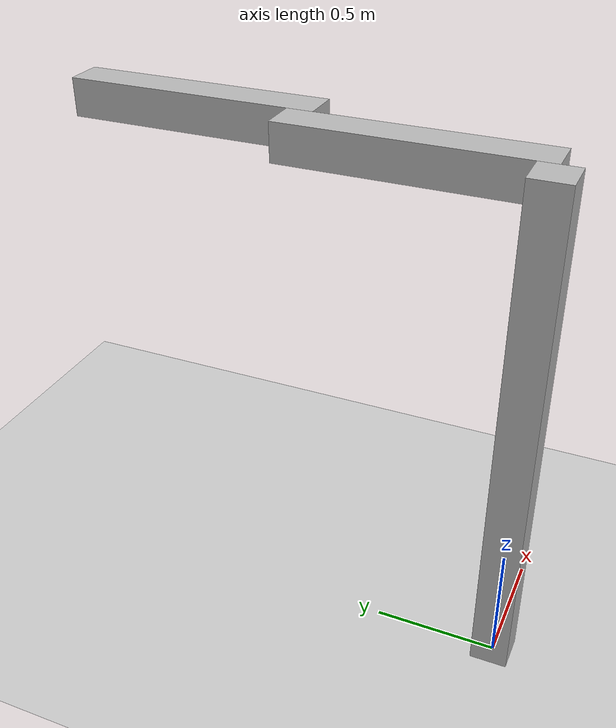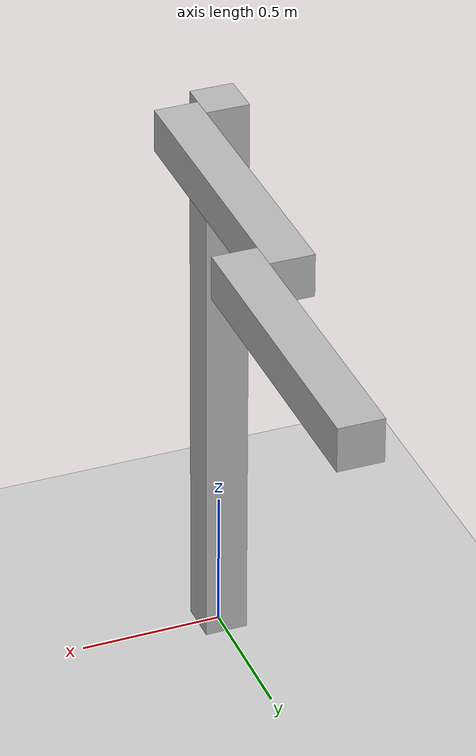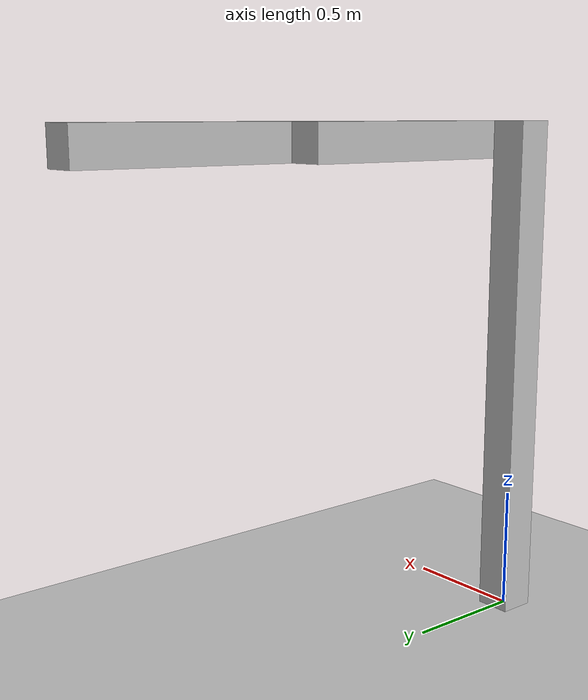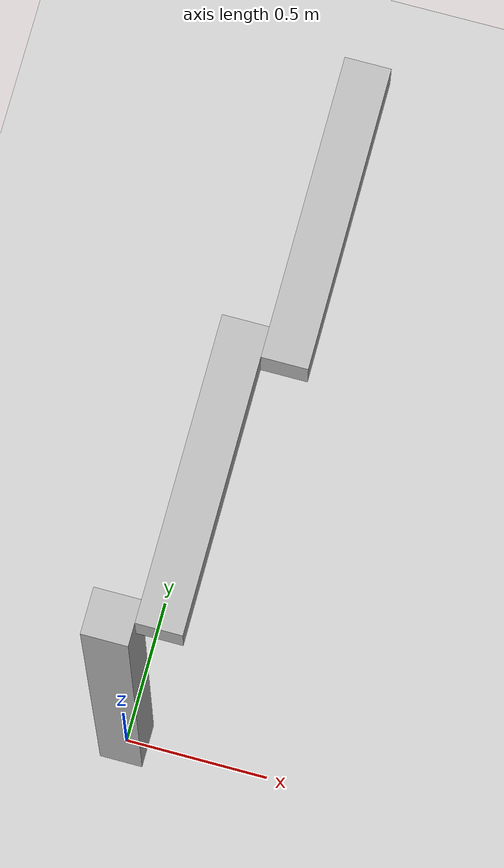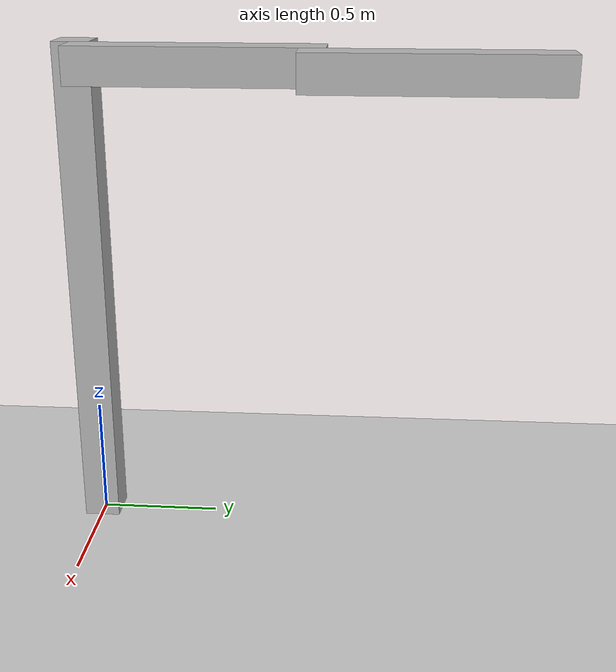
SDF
<?xml version="1.0"?>

<sdf version='1.11'>

  <world name="tutorial_controlboard">
    <light type="directional" name="sun">
      <cast_shadows>true</cast_shadows>
      <pose>0 0 10 0 0 0</pose>
      <diffuse>0.8 0.8 0.8 1</diffuse>
      <specular>0.2 0.2 0.2 1</specular>
      <attenuation>
        <range>1000</range>
        <constant>0.9</constant>
        <linear>0.01</linear>
        <quadratic>0.001</quadratic>
      </attenuation>
      <direction>-0.5 0.1 -0.9</direction>
    </light>

    <model name="ground_plane">
      <static>true</static>
      <link name="link">
        <collision name="collision">
          <geometry>
            <plane>
              <normal>0 0 1</normal>
              <size>100 100</size>
            </plane>
          </geometry>
        </collision>
        <visual name="visual">
          <geometry>
            <plane>
              <normal>0 0 1</normal>
              <size>100 100</size>
            </plane>
          </geometry>
          <material>
            <ambient>0.8 0.8 0.8 1</ambient>
            <diffuse>0.8 0.8 0.8 1</diffuse>
            <specular>0.8 0.8 0.8 1</specular>
          </material>
        </visual>
      </link>
    </model>

    <model name="double_pendulum">
      <joint name="fixed_base" type="fixed">
        <parent>world</parent>
        <child>base_link</child>
      </joint>
      <link name='base_link'>
        <inertial>
          <pose>0 0 0 0 0 0</pose>
          <density>8000</density>
        </inertial>
        <collision name='base_link_fixed_joint_lump__base_collision'>
          <pose>0 0 1 0 0 0</pose>
          <geometry>
            <box>
              <size>0.15 0.15 2.15</size>
            </box>
          </geometry>
        </collision>
        <visual name='base_link_fixed_joint_lump__base_visual'>
          <pose>0 0 1 0 0 0</pose>
          <geometry>
            <box>
              <size>0.15 0.15 2.15</size>
            </box>
          </geometry>
        </visual>
      </link>
      <joint name='upper_joint' type='revolute'>
        <pose relative_to='base_link'>0.15 0 2 -1.5708 0 0</pose>
        <parent>base_link</parent>
        <child>link1</child>
        <axis>
          <xyz>1 0 0</xyz>
          <dynamics>
            <damping>0.0</damping>
            <spring_reference>0</spring_reference>
            <spring_stiffness>0.0</spring_stiffness>
          </dynamics>
        </axis>
      </joint>
      <link name='link1'>
        <pose relative_to='upper_joint'>0 0 0 0 0 0</pose>
        <self_collide>0</self_collide>
        <inertial>
          <pose>0 0 0.5 0 0 0</pose>
          <density>8000</density>
        </inertial>
        <collision name='upper_joint_collision'>
          <pose>0 0 0.5 0 0 0</pose>
          <geometry>
            <box>
              <size>0.15 0.15 1.0</size>
            </box>
          </geometry>
        </collision>
        <visual name='upper_joint_visual'>
          <pose>0 0 0.5 0 0 0</pose>
          <geometry>
            <box>
              <size>0.15 0.15 1.0</size>
            </box>
          </geometry>
        </visual>
      </link>
      <joint name='lower_joint' type='revolute'>
        <pose relative_to='link1'>0.15 0 0.9 0 0 0</pose>
        <parent>link1</parent>
        <child>link2</child>
        <axis>
          <xyz>1 0 0</xyz>
          <dynamics>
            <damping>0.0</damping>
            <spring_reference>0</spring_reference>
            <spring_stiffness>0.0</spring_stiffness>
          </dynamics>
        </axis>
      </joint>
      <link name='link2'>
        <pose relative_to='lower_joint'>0 0 0 0 0 0</pose>
        <self_collide>0</self_collide>
        <inertial>
          <pose>0 0 0.5 0 0 0</pose>
          <density>8000</density>
        </inertial>
        <collision name='lower_joint_collision'>
          <pose>0 0 0.5 0 0 0</pose>
          <geometry>
            <box>
              <size>0.15 0.15 1.0</size>
            </box>
          </geometry>
        </collision>
        <visual name='lower_joint_visual'>
          <pose>0 0 0.5 0 0 0</pose>
          <geometry>
            <box>
              <size>0.15 0.15 1.0</size>
            </box>
          </geometry>
        </visual>
      </link>

      <plugin name="gzyarp::ControlBoard" filename="gz-sim-yarp-controlboard-system">
        <yarpConfigurationFile>
          ../../../tests/controlboard/conf/gazebo_controlboard2.ini
        </yarpConfigurationFile>
        <initialConfiguration>0.0</initialConfiguration>
      </plugin>
    </model>

  </world>
</sdf>
